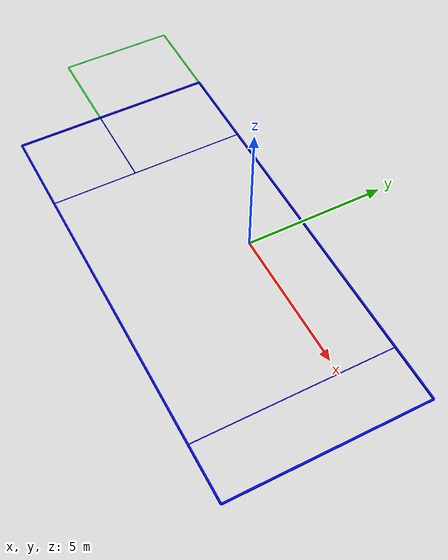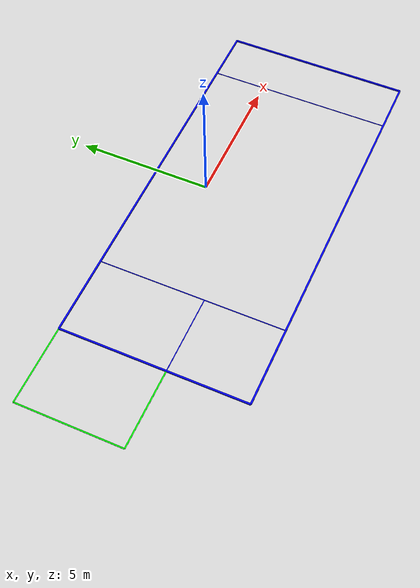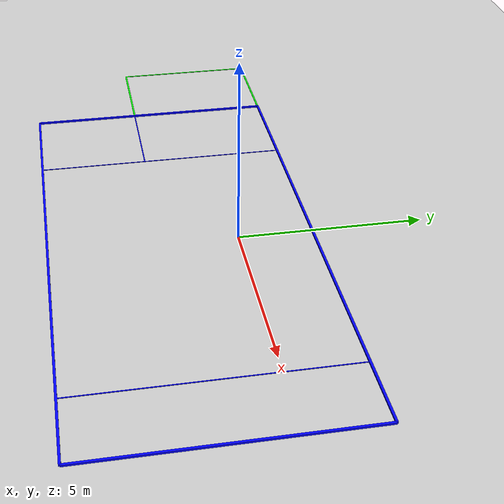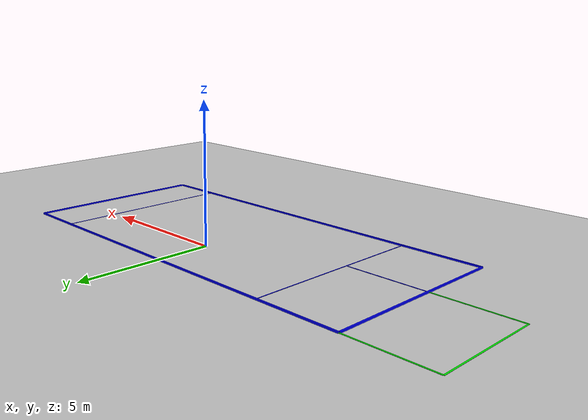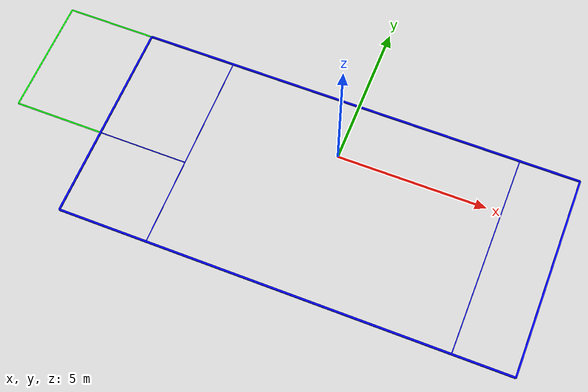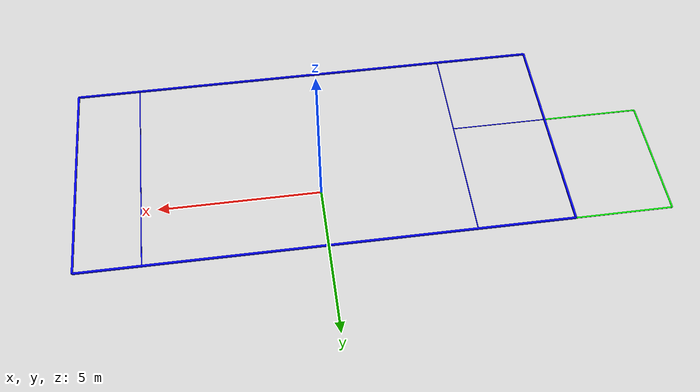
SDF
<sdf version="1.6">
 <world name="default">
  <light name="sun" type="directional">
   <pose>0 0 10 0 -0 0</pose>
   <diffuse>0.8 0.8 0.8 1</diffuse>
   <specular>0.2 0.2 0.2 1</specular>
   <attenuation>
    <range>1000</range>
    <constant>0.9</constant>
    <linear>0.01</linear>
    <quadratic>0.001</quadratic>
   </attenuation>
   <direction>-0.5 0.1 -0.9</direction>
  </light>
  <scene><ambient>0.4 0.4 0.4 1</ambient><background>0.7 0.7 0.7 1</background><shadows>1</shadows></scene>
  <audio><device>default</device></audio>
  <spherical_coordinates>
   <surface_model>EARTH_WGS84</surface_model>
   <latitude_deg>0</latitude_deg>
   <longitude_deg>0</longitude_deg>
   <elevation>0</elevation>
   <heading_deg>0</heading_deg>
  </spherical_coordinates>
  <model name="asphaltLARGE">
   <static>1</static>
   <link name="link">
    <collision name="collision">
     <geometry><plane><normal>0 0 1</normal><size>100 100</size></plane></geometry>
     <surface><friction><ode><mu>0.8</mu><mu2>0.4</mu2></ode></friction></surface>
    </collision>
    <visual name="visual">
     <cast_shadows>0</cast_shadows>
     <geometry><plane><normal>0 0 1</normal><size>100 100</size></plane></geometry>
     <material>
      <script>
       <uri>model://asphaltLARGE/materials/scripts</uri>
       <uri>model://asphaltLARGE/materials/textures</uri>
       <name>asphaltLARGE/ground</name>
      </script>
     </material>
    </visual>
   </link>
  </model>
  <model name="env_1_limit">
   <link name="Wall_0">
    <collision name="Wall_0_Collision">
     <geometry><box><size>15 0.06 0.06</size></box></geometry>
     <pose>0 -5 0 0 -0 0</pose>
    </collision>
    <visual name="Wall_0_Visual">
     <pose>0 -5 0 0 -0 0</pose>
     <geometry><box><size>15 0.06 0.06</size></box></geometry>
     <material>
      <script><uri>file://media/materials/scripts/gazebo.material</uri><name>Gazebo/Grey</name></script>
      <diffuse>0 0 1 1</diffuse>
     </material>
     <meta><layer>0</layer></meta>
    </visual>
   </link>
   <link name="Wall_1">
    <collision name="Wall_1_Collision">
     <geometry><box><size>15 0.06 0.06</size></box></geometry>
     <pose>0 2 0 0 -0 0</pose>
    </collision>
    <visual name="Wall_1_Visual">
     <pose>0 2 0 0 -0 0</pose>
     <geometry><box><size>15 0.06 0.06</size></box></geometry>
     <material>
      <script><uri>file://media/materials/scripts/gazebo.material</uri><name>Gazebo/Grey</name></script>
      <diffuse>0 0 1 1</diffuse>
     </material>
     <meta><layer>0</layer></meta>
    </visual>
   </link>
   <link name="Wall_2">
    <collision name="Wall_2_Collision">
     <geometry><box><size>0.06 7 0.06</size></box></geometry>
     <pose>7.5 -1.5 0 0 0 0</pose>
    </collision>
    <visual name="Wall_2_Visual">
     <pose>7.5 -1.5 0 0 0 0</pose>
     <geometry><box><size>0.06 7 0.06</size></box></geometry>
     <material>
      <script><uri>file://media/materials/scripts/gazebo.material</uri><name>Gazebo/Grey</name></script>
      <diffuse>0 0 1 1</diffuse>
     </material>
     <meta><layer>0</layer></meta>
    </visual>
   </link>
   <link name="Wall_3">
    <collision name="Wall_3_Collision">
     <geometry><box><size>0.06 7 0.06</size></box></geometry>
     <pose>-7.5 -1.5 0 0 0 0</pose>
    </collision>
    <visual name="Wall_3_Visual">
     <pose>-7.5 -1.5 0 0 0 0</pose>
     <geometry><box><size>0.06 7 0.06</size></box></geometry>
     <material>
      <script><uri>file://media/materials/scripts/gazebo.material</uri><name>Gazebo/Grey</name></script>
      <diffuse>0 0 1 1</diffuse>
     </material>
     <meta><layer>0</layer></meta>
    </visual>
   </link>
   <link name="Wall_4">
    <collision name="Wall_4_Collision">
     <geometry><box><size>0.03 7 0.01</size></box></geometry>
     <pose>-4.5 -1.5 0 0 0 0</pose>
    </collision>
    <visual name="Wall_4_Visual">
     <pose>-4.5 -1.5 0 0 0 0</pose>
     <geometry><box><size>0.03 7 0.01</size></box></geometry>
     <material>
      <script><uri>file://media/materials/scripts/gazebo.material</uri><name>Gazebo/Grey</name></script>
      <diffuse>0 0,062745098 0,188235294 0.38</diffuse>
     </material>
     <meta><layer>0</layer></meta>
    </visual>
   </link>
   <link name="Wall_5">
    <collision name="Wall_5_Collision">
     <geometry><box><size>0.03 7 0.01</size></box></geometry>
     <pose>5.5 -1.5 0 0 0 0</pose>
    </collision>
    <visual name="Wall_5_Visual">
     <pose>5.5 -1.5 0 0 0 0</pose>
     <geometry><box><size>0.03 7 0.01</size></box></geometry>
     <material>
      <script><uri>file://media/materials/scripts/gazebo.material</uri><name>Gazebo/Grey</name></script>
      <diffuse>0 0,062745098 0,188235294 0.38</diffuse>
     </material>
     <meta><layer>0</layer></meta>
    </visual>
   </link>
   <link name="Wall_6">
    <collision name="Wall_6_Collision">
     <geometry><box><size>0.05 4 0.01</size></box></geometry>
     <pose>-10.5 0 0 0 0 0</pose>
    </collision>
    <visual name="Wall_6_Visual">
     <pose>-10.5 0 0 0 0 0</pose>
     <geometry><box><size>0.05 4 0.01</size></box></geometry>
     <material>
      <script><uri>file://media/materials/scripts/gazebo.material</uri><name>Gazebo/Grey</name></script>
      <diffuse>0.0196078 0.945098 0.027451 1</diffuse>
     </material>
     <meta><layer>0</layer></meta>
    </visual>
   </link>
   <link name="Wall_7">
    <collision name="Wall_7_Collision">
     <geometry><box><size>3 0.05 0.01</size></box></geometry>
     <pose>-9 -2 0 0 0 0</pose>
    </collision>
    <visual name="Wall_7_Visual">
     <pose>-9 -2 0 0 0 0</pose>
     <geometry><box><size>3 0.05 0.01</size></box></geometry>
     <material>
      <script><uri>file://media/materials/scripts/gazebo.material</uri><name>Gazebo/Grey</name></script>
      <diffuse>0.0196078 0.945098 0.027451 1</diffuse>
     </material>
     <meta><layer>0</layer></meta>
    </visual>
   </link>
   <link name="Wall_8">
    <collision name="Wall_8_Collision">
     <geometry><box><size>3 0.05 0.01</size></box></geometry>
     <pose>-9 2 0 0 0 0</pose>
    </collision>
    <visual name="Wall_8_Visual">
     <pose>-9 2 0 0 0 0</pose>
     <geometry><box><size>3 0.05 0.01</size></box></geometry>
     <material>
      <script><uri>file://media/materials/scripts/gazebo.material</uri><name>Gazebo/Grey</name></script>
      <diffuse>0.0196078 0.945098 0.027451 1</diffuse>
     </material>
     <meta><layer>0</layer></meta>
    </visual>
   </link>
   <link name="Wall_9">
    <collision name="Wall_9_Collision">
     <geometry><box><size>3 0.03 0.01</size></box></geometry>
     <pose>-6 -2 0 0 0 0</pose>
    </collision>
    <visual name="Wall_9_Visual">
     <pose>-6 -2 0 0 0 0</pose>
     <geometry><box><size>3 0.03 0.01</size></box></geometry>
     <material>
      <script><uri>file://media/materials/scripts/gazebo.material</uri><name>Gazebo/Grey</name></script>
      <diffuse>0 0,062745098 0,188235294 0.38</diffuse>
     </material>
     <meta><layer>0</layer></meta>
    </visual>
   </link>
   <static>1</static>
  </model>
 </world>
</sdf>
